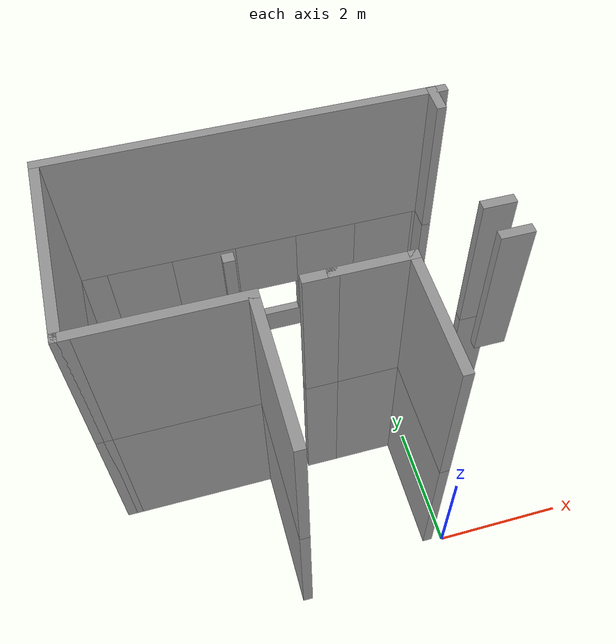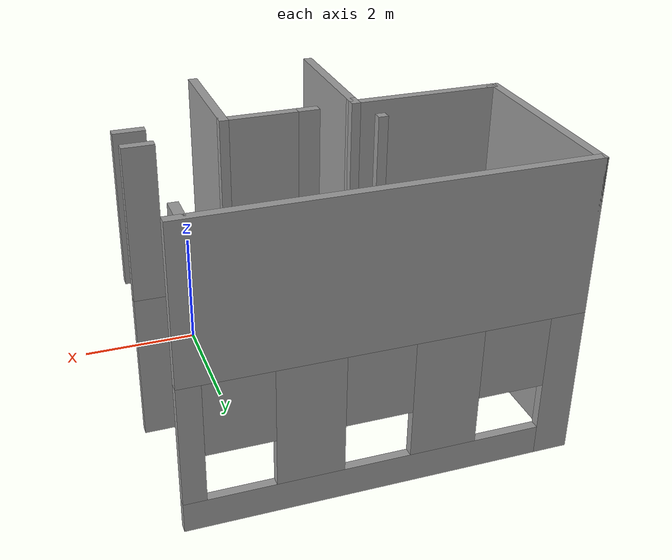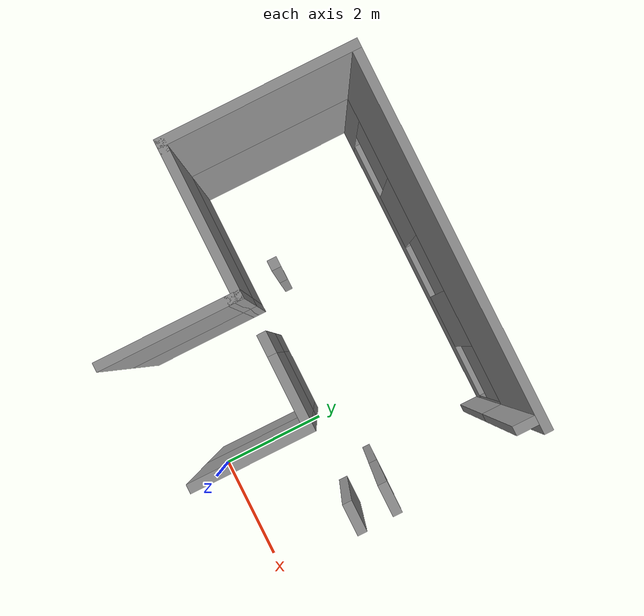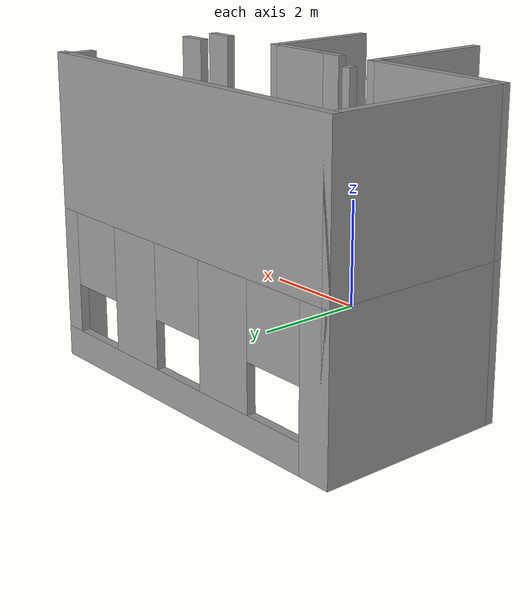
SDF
<sdf version="1.6">
 <model name="2storeyBuilding">
  <pose>-0.004073 0.180036 0 0 -0 0</pose>
  <link name="Wall_100">
   <collision name="Wall_100_Collision">
    <geometry><box><size>3.25 0.15 2.5</size></box></geometry>
    <pose>0 0 1.25 0 -0 0</pose>
   </collision>
   <visual name="Wall_100_Visual">
    <pose>0 0 1.25 0 -0 0</pose>
    <geometry><box><size>3.25 0.15 2.5</size></box></geometry>
    <material>
     <script><uri>file://media/materials/scripts/gazebo.material</uri><name>Gazebo/Grey</name></script>
     <ambient>1 1 1 1</ambient>
    </material>
    <meta><layer>1</layer></meta>
   </visual>
   <pose>-4.825 3.275 2.5 0 -0 1.5708</pose>
  </link>
  <link name="Wall_101">
   <collision name="Wall_101_Collision">
    <geometry><box><size>6.25 0.15 2.5</size></box></geometry>
    <pose>0 0 1.25 0 -0 0</pose>
   </collision>
   <visual name="Wall_101_Visual">
    <pose>0 0 1.25 0 -0 0</pose>
    <geometry><box><size>6.25 0.15 2.5</size></box></geometry>
    <material>
     <script><uri>file://media/materials/scripts/gazebo.material</uri><name>Gazebo/Grey</name></script>
     <ambient>1 1 1 1</ambient>
    </material>
    <meta><layer>1</layer></meta>
   </visual>
   <pose>-1.775 4.825 2.5 0 -0 0</pose>
  </link>
  <link name="Wall_124">
   <collision name="Wall_124_Collision">
    <geometry><box><size>2 0.15 2.5</size></box></geometry>
    <pose>0 0 1.25 0 -0 0</pose>
   </collision>
   <visual name="Wall_124_Visual">
    <pose>0 0 1.25 0 -0 0</pose>
    <geometry><box><size>2 0.15 2.5</size></box></geometry>
    <material>
     <script><uri>file://media/materials/scripts/gazebo.material</uri><name>Gazebo/Grey</name></script>
     <ambient>1 1 1 1</ambient>
    </material>
    <meta><layer>1</layer></meta>
   </visual>
   <pose>-0.228258 0.868105 2.5 0 -0 1.5708</pose>
  </link>
  <link name="Wall_125">
   <collision name="Wall_125_Collision">
    <geometry><box><size>1.25 0.15 2.5</size></box></geometry>
    <pose>0 0 1.25 0 -0 0</pose>
   </collision>
   <visual name="Wall_125_Visual">
    <pose>0 0 1.25 0 -0 0</pose>
    <geometry><box><size>1.25 0.15 2.5</size></box></geometry>
    <material>
     <script><uri>file://media/materials/scripts/gazebo.material</uri><name>Gazebo/Grey</name></script>
     <ambient>1 1 1 1</ambient>
    </material>
    <meta><layer>1</layer></meta>
   </visual>
   <pose>-0.778258 1.7931 2.5 0 -0 3.14159</pose>
  </link>
  <link name="Wall_126">
   <collision name="Wall_126_Collision">
    <geometry><box><size>0.5 0.15 2.5</size></box></geometry>
    <pose>0 0 1.25 0 -0 0</pose>
   </collision>
   <visual name="Wall_126_Visual">
    <pose>0 0 1.25 0 -0 0</pose>
    <geometry><box><size>0.5 0.15 2.5</size></box></geometry>
    <material>
     <script><uri>file://media/materials/scripts/gazebo.material</uri><name>Gazebo/Grey</name></script>
     <ambient>1 1 1 1</ambient>
    </material>
    <meta><layer>1</layer></meta>
   </visual>
   <pose>-1.50326 1.7931 2.5 0 -0 3.14159</pose>
  </link>
  <link name="Wall_127">
   <collision name="Wall_127_Collision">
    <geometry><box><size>0.5 0.15 2.5</size></box></geometry>
    <pose>0 0 1.25 0 -0 0</pose>
   </collision>
   <visual name="Wall_127_Visual">
    <pose>0 0 1.25 0 -0 0</pose>
    <geometry><box><size>0.5 0.15 2.5</size></box></geometry>
    <material>
     <script><uri>file://media/materials/scripts/gazebo.material</uri><name>Gazebo/Grey</name></script>
     <ambient>1 1 1 1</ambient>
    </material>
    <meta><layer>1</layer></meta>
   </visual>
   <pose>1.20108 1.80388 2.5 0 -0 3.14159</pose>
  </link>
  <link name="Wall_128">
   <collision name="Wall_128_Collision">
    <geometry><box><size>0.5 0.15 2.5</size></box></geometry>
    <pose>0 0 1.25 0 -0 0</pose>
   </collision>
   <visual name="Wall_128_Visual">
    <pose>0 0 1.25 0 -0 0</pose>
    <geometry><box><size>0.5 0.15 2.5</size></box></geometry>
    <material>
     <script><uri>file://media/materials/scripts/gazebo.material</uri><name>Gazebo/Grey</name></script>
     <ambient>1 1 1 1</ambient>
    </material>
    <meta><layer>1</layer></meta>
   </visual>
   <pose>1.18136 2.37591 2.5 0 -0 3.14159</pose>
  </link>
  <link name="Wall_129">
   <collision name="Wall_129_Collision">
    <geometry><box><size>0.5 0.15 2.5</size></box></geometry>
    <pose>0 0 1.25 0 -0 0</pose>
   </collision>
   <visual name="Wall_129_Visual">
    <pose>0 0 1.25 0 -0 0</pose>
    <geometry><box><size>0.5 0.15 2.5</size></box></geometry>
    <material>
     <script><uri>file://media/materials/scripts/gazebo.material</uri><name>Gazebo/Grey</name></script>
     <ambient>1 1 1 1</ambient>
    </material>
    <meta><layer>1</layer></meta>
   </visual>
   <pose>1.11308 4.6403 2.5 0 -0 -1.5708</pose>
  </link>
  <link name="Wall_131">
   <collision name="Wall_131_Collision">
    <geometry><box><size>0.16 0.15 2.5</size></box></geometry>
    <pose>0 0 1.25 0 -0 0</pose>
   </collision>
   <visual name="Wall_131_Visual">
    <pose>0 0 1.25 0 -0 0</pose>
    <geometry><box><size>0.16 0.15 2.5</size></box></geometry>
    <material>
     <script><uri>file://media/materials/scripts/gazebo.material</uri><name>Gazebo/Grey</name></script>
     <ambient>1 1 1 1</ambient>
    </material>
    <meta><layer>1</layer></meta>
   </visual>
   <pose>-2.55403 2.39774 2.5 0 -0 0</pose>
  </link>
  <link name="Wall_19">
   <collision name="Wall_19_Collision">
    <geometry><box><size>2.25 0.15 2.5</size></box></geometry>
    <pose>0 0 1.25 0 -0 0</pose>
   </collision>
   <visual name="Wall_19_Visual">
    <pose>0 0 1.25 0 -0 0</pose>
    <geometry><box><size>2.25 0.15 2.5</size></box></geometry>
    <material>
     <script><uri>file://media/materials/scripts/gazebo.material</uri><name>Gazebo/Grey</name></script>
     <ambient>1 1 1 1</ambient>
    </material>
    <meta><layer>0</layer></meta>
   </visual>
   <pose>-2.375 0.575 0 0 -0 1.5708</pose>
  </link>
  <link name="Wall_20">
   <collision name="Wall_20_Collision">
    <geometry><box><size>0.25 0.15 2.5</size></box></geometry>
    <pose>0 0 1.25 0 -0 0</pose>
   </collision>
   <visual name="Wall_20_Visual">
    <pose>0 0 1.25 0 -0 0</pose>
    <geometry><box><size>0.25 0.15 2.5</size></box></geometry>
    <material>
     <script><uri>file://media/materials/scripts/gazebo.material</uri><name>Gazebo/Grey</name></script>
     <ambient>1 1 1 1</ambient>
    </material>
    <meta><layer>0</layer></meta>
   </visual>
   <pose>-2.375 1.675 0 0 -0 1.5708</pose>
  </link>
  <link name="Wall_21">
   <collision name="Wall_21_Collision">
    <geometry><box><size>2.5 0.15 2.5</size></box></geometry>
    <pose>0 0 1.25 0 -0 0</pose>
   </collision>
   <visual name="Wall_21_Visual">
    <pose>0 0 1.25 0 -0 0</pose>
    <geometry><box><size>2.5 0.15 2.5</size></box></geometry>
    <material>
     <script><uri>file://media/materials/scripts/gazebo.material</uri><name>Gazebo/Grey</name></script>
     <ambient>1 1 1 1</ambient>
    </material>
    <meta><layer>0</layer></meta>
   </visual>
   <pose>-3.55 1.725 0 0 -0 3.14159</pose>
  </link>
  <link name="Wall_22">
   <collision name="Wall_22_Collision">
    <geometry><box><size>0.25 0.15 2.5</size></box></geometry>
    <pose>0 0 1.25 0 -0 0</pose>
   </collision>
   <visual name="Wall_22_Visual">
    <pose>0 0 1.25 0 -0 0</pose>
    <geometry><box><size>0.25 0.15 2.5</size></box></geometry>
    <material>
     <script><uri>file://media/materials/scripts/gazebo.material</uri><name>Gazebo/Grey</name></script>
     <ambient>1 1 1 1</ambient>
    </material>
    <meta><layer>0</layer></meta>
   </visual>
   <pose>-4.775 1.725 0 0 -0 3.14159</pose>
  </link>
  <link name="Wall_23">
   <collision name="Wall_23_Collision">
    <geometry><box><size>3.25 0.15 2.5</size></box></geometry>
    <pose>0 0 1.25 0 -0 0</pose>
   </collision>
   <visual name="Wall_23_Visual">
    <pose>0 0 1.25 0 -0 0</pose>
    <geometry><box><size>3.25 0.15 2.5</size></box></geometry>
    <material>
     <script><uri>file://media/materials/scripts/gazebo.material</uri><name>Gazebo/Grey</name></script>
     <ambient>1 1 1 1</ambient>
    </material>
    <meta><layer>0</layer></meta>
   </visual>
   <pose>-4.825 3.275 0 0 -0 1.5708</pose>
  </link>
  <link name="Wall_24">
   <pose>-1.775 4.825 0 0 -0 0</pose>
   <visual name="Wall_24_Visual_0">
    <pose>-2.84052 0 1.25 0 -0 0</pose>
    <geometry><box><size>0.56895 0.15 2.5</size></box></geometry>
    <material>
     <script><uri>file://media/materials/scripts/gazebo.material</uri><name>Gazebo/Grey</name></script>
     <ambient>1 1 1 1</ambient>
    </material>
    <meta><layer>0</layer></meta>
   </visual>
   <collision name="Wall_24_Collision_0">
    <geometry><box><size>0.56895 0.15 2.5</size></box></geometry>
    <pose>-2.84052 0 1.25 0 -0 0</pose>
   </collision>
   <visual name="Wall_24_Visual_1">
    <pose>0.284475 0 0.25 0 -0 0</pose>
    <geometry><box><size>5.68105 0.15 0.5</size></box></geometry>
    <material>
     <script><uri>file://media/materials/scripts/gazebo.material</uri><name>Gazebo/Grey</name></script>
     <ambient>1 1 1 1</ambient>
    </material>
    <meta><layer>0</layer></meta>
   </visual>
   <collision name="Wall_24_Collision_1">
    <geometry><box><size>5.68105 0.15 0.5</size></box></geometry>
    <pose>0.284475 0 0.25 0 -0 0</pose>
   </collision>
   <visual name="Wall_24_Visual_2">
    <pose>-0.93452 0 1.5 0 -0 0</pose>
    <geometry><box><size>1.08103 0.15 2</size></box></geometry>
    <material>
     <script><uri>file://media/materials/scripts/gazebo.material</uri><name>Gazebo/Grey</name></script>
     <ambient>1 1 1 1</ambient>
    </material>
    <meta><layer>0</layer></meta>
   </visual>
   <collision name="Wall_24_Collision_2">
    <geometry><box><size>1.08103 0.15 2</size></box></geometry>
    <pose>-0.93452 0 1.5 0 -0 0</pose>
   </collision>
   <visual name="Wall_24_Visual_3">
    <pose>1.18841 0 1.5 0 -0 0</pose>
    <geometry><box><size>1.05469 0.15 2</size></box></geometry>
    <material>
     <script><uri>file://media/materials/scripts/gazebo.material</uri><name>Gazebo/Grey</name></script>
     <ambient>1 1 1 1</ambient>
    </material>
    <meta><layer>0</layer></meta>
   </visual>
   <collision name="Wall_24_Collision_3">
    <geometry><box><size>1.05469 0.15 2</size></box></geometry>
    <pose>1.18841 0 1.5 0 -0 0</pose>
   </collision>
   <visual name="Wall_24_Visual_4">
    <pose>2.94359 0 1.5 0 -0 0</pose>
    <geometry><box><size>0.362818 0.15 2</size></box></geometry>
    <material>
     <script><uri>file://media/materials/scripts/gazebo.material</uri><name>Gazebo/Grey</name></script>
     <ambient>1 1 1 1</ambient>
    </material>
    <meta><layer>0</layer></meta>
   </visual>
   <collision name="Wall_24_Collision_4">
    <geometry><box><size>0.362818 0.15 2</size></box></geometry>
    <pose>2.94359 0 1.5 0 -0 0</pose>
   </collision>
   <visual name="Wall_24_Visual_5">
    <pose>-2.01554 0 1.9 0 -0 0</pose>
    <geometry><box><size>1.08101 0.15 1.2</size></box></geometry>
    <material>
     <script><uri>file://media/materials/scripts/gazebo.material</uri><name>Gazebo/Grey</name></script>
     <ambient>1 1 1 1</ambient>
    </material>
    <meta><layer>0</layer></meta>
   </visual>
   <collision name="Wall_24_Collision_5">
    <geometry><box><size>1.08101 0.15 1.2</size></box></geometry>
    <pose>-2.01554 0 1.9 0 -0 0</pose>
   </collision>
   <visual name="Wall_24_Visual_6">
    <pose>0.133533 0 1.9 0 -0 0</pose>
    <geometry><box><size>1.05507 0.15 1.2</size></box></geometry>
    <material>
     <script><uri>file://media/materials/scripts/gazebo.material</uri><name>Gazebo/Grey</name></script>
     <ambient>1 1 1 1</ambient>
    </material>
    <meta><layer>0</layer></meta>
   </visual>
   <collision name="Wall_24_Collision_6">
    <geometry><box><size>1.05507 0.15 1.2</size></box></geometry>
    <pose>0.133533 0 1.9 0 -0 0</pose>
   </collision>
   <visual name="Wall_24_Visual_7">
    <pose>2.23897 0 1.9 0 -0 0</pose>
    <geometry><box><size>1.04643 0.15 1.2</size></box></geometry>
    <material>
     <script><uri>file://media/materials/scripts/gazebo.material</uri><name>Gazebo/Grey</name></script>
     <ambient>1 1 1 1</ambient>
    </material>
    <meta><layer>0</layer></meta>
   </visual>
   <collision name="Wall_24_Collision_7">
    <geometry><box><size>1.04643 0.15 1.2</size></box></geometry>
    <pose>2.23897 0 1.9 0 -0 0</pose>
   </collision>
  </link>
  <link name="Wall_59">
   <collision name="Wall_59_Collision">
    <geometry><box><size>2 0.15 2.5</size></box></geometry>
    <pose>0 0 1.25 0 -0 0</pose>
   </collision>
   <visual name="Wall_59_Visual">
    <pose>0 0 1.25 0 -0 0</pose>
    <geometry><box><size>2 0.15 2.5</size></box></geometry>
    <material>
     <script><uri>file://media/materials/scripts/gazebo.material</uri><name>Gazebo/Grey</name></script>
     <ambient>1 1 1 1</ambient>
    </material>
    <meta><layer>0</layer></meta>
   </visual>
   <pose>-0.228258 0.868105 0 0 -0 1.5708</pose>
  </link>
  <link name="Wall_60">
   <collision name="Wall_60_Collision">
    <geometry><box><size>1.25 0.15 2.5</size></box></geometry>
    <pose>0 0 1.25 0 -0 0</pose>
   </collision>
   <visual name="Wall_60_Visual">
    <pose>0 0 1.25 0 -0 0</pose>
    <geometry><box><size>1.25 0.15 2.5</size></box></geometry>
    <material>
     <script><uri>file://media/materials/scripts/gazebo.material</uri><name>Gazebo/Grey</name></script>
     <ambient>1 1 1 1</ambient>
    </material>
    <meta><layer>0</layer></meta>
   </visual>
   <pose>-0.778258 1.7931 0 0 -0 3.14159</pose>
  </link>
  <link name="Wall_61">
   <collision name="Wall_61_Collision">
    <geometry><box><size>0.5 0.15 2.5</size></box></geometry>
    <pose>0 0 1.25 0 -0 0</pose>
   </collision>
   <visual name="Wall_61_Visual">
    <pose>0 0 1.25 0 -0 0</pose>
    <geometry><box><size>0.5 0.15 2.5</size></box></geometry>
    <material>
     <script><uri>file://media/materials/scripts/gazebo.material</uri><name>Gazebo/Grey</name></script>
     <ambient>1 1 1 1</ambient>
    </material>
    <meta><layer>0</layer></meta>
   </visual>
   <pose>-1.50326 1.7931 0 0 -0 3.14159</pose>
  </link>
  <link name="Wall_65">
   <collision name="Wall_65_Collision">
    <geometry><box><size>0.5 0.15 2.5</size></box></geometry>
    <pose>0 0 1.25 0 -0 0</pose>
   </collision>
   <visual name="Wall_65_Visual">
    <pose>0 0 1.25 0 -0 0</pose>
    <geometry><box><size>0.5 0.15 2.5</size></box></geometry>
    <material>
     <script><uri>file://media/materials/scripts/gazebo.material</uri><name>Gazebo/Grey</name></script>
     <ambient>1 1 1 1</ambient>
    </material>
    <meta><layer>0</layer></meta>
   </visual>
   <pose>1.18136 2.37591 0 0 -0 3.14159</pose>
  </link>
  <link name="Wall_68">
   <collision name="Wall_68_Collision">
    <geometry><box><size>0.5 0.15 2.5</size></box></geometry>
    <pose>0 0 1.25 0 -0 0</pose>
   </collision>
   <visual name="Wall_68_Visual">
    <pose>0 0 1.25 0 -0 0</pose>
    <geometry><box><size>0.5 0.15 2.5</size></box></geometry>
    <material>
     <script><uri>file://media/materials/scripts/gazebo.material</uri><name>Gazebo/Grey</name></script>
     <ambient>1 1 1 1</ambient>
    </material>
    <meta><layer>0</layer></meta>
   </visual>
   <pose>1.11308 4.6403 0 0 -0 -1.5708</pose>
  </link>
  <link name="Wall_71">
   <collision name="Wall_71_Collision">
    <geometry><box><size>0.16 0.15 2.5</size></box></geometry>
    <pose>0 0 1.25 0 -0 0</pose>
   </collision>
   <visual name="Wall_71_Visual">
    <pose>0 0 1.25 0 -0 0</pose>
    <geometry><box><size>0.16 0.15 2.5</size></box></geometry>
    <material>
     <script><uri>file://media/materials/scripts/gazebo.material</uri><name>Gazebo/Grey</name></script>
     <ambient>1 1 1 1</ambient>
    </material>
    <meta><layer>0</layer></meta>
   </visual>
   <pose>-2.55403 2.39774 0 0 -0 0</pose>
  </link>
  <link name="Wall_96">
   <collision name="Wall_96_Collision">
    <geometry><box><size>2.25 0.15 2.5</size></box></geometry>
    <pose>0 0 1.25 0 -0 0</pose>
   </collision>
   <visual name="Wall_96_Visual">
    <pose>0 0 1.25 0 -0 0</pose>
    <geometry><box><size>2.25 0.15 2.5</size></box></geometry>
    <material>
     <script><uri>file://media/materials/scripts/gazebo.material</uri><name>Gazebo/Grey</name></script>
     <ambient>1 1 1 1</ambient>
    </material>
    <meta><layer>1</layer></meta>
   </visual>
   <pose>-2.375 0.575 2.5 0 -0 1.5708</pose>
  </link>
  <link name="Wall_97">
   <collision name="Wall_97_Collision">
    <geometry><box><size>0.25 0.15 2.5</size></box></geometry>
    <pose>0 0 1.25 0 -0 0</pose>
   </collision>
   <visual name="Wall_97_Visual">
    <pose>0 0 1.25 0 -0 0</pose>
    <geometry><box><size>0.25 0.15 2.5</size></box></geometry>
    <material>
     <script><uri>file://media/materials/scripts/gazebo.material</uri><name>Gazebo/Grey</name></script>
     <ambient>1 1 1 1</ambient>
    </material>
    <meta><layer>1</layer></meta>
   </visual>
   <pose>-2.375 1.675 2.5 0 -0 1.5708</pose>
  </link>
  <link name="Wall_98">
   <collision name="Wall_98_Collision">
    <geometry><box><size>2.5 0.15 2.5</size></box></geometry>
    <pose>0 0 1.25 0 -0 0</pose>
   </collision>
   <visual name="Wall_98_Visual">
    <pose>0 0 1.25 0 -0 0</pose>
    <geometry><box><size>2.5 0.15 2.5</size></box></geometry>
    <material>
     <script><uri>file://media/materials/scripts/gazebo.material</uri><name>Gazebo/Grey</name></script>
     <ambient>1 1 1 1</ambient>
    </material>
    <meta><layer>1</layer></meta>
   </visual>
   <pose>-3.55 1.725 2.5 0 -0 3.14159</pose>
  </link>
  <link name="Wall_99">
   <collision name="Wall_99_Collision">
    <geometry><box><size>0.25 0.15 2.5</size></box></geometry>
    <pose>0 0 1.25 0 -0 0</pose>
   </collision>
   <visual name="Wall_99_Visual">
    <pose>0 0 1.25 0 -0 0</pose>
    <geometry><box><size>0.25 0.15 2.5</size></box></geometry>
    <material>
     <script><uri>file://media/materials/scripts/gazebo.material</uri><name>Gazebo/Grey</name></script>
     <ambient>1 1 1 1</ambient>
    </material>
    <meta><layer>1</layer></meta>
   </visual>
   <pose>-4.775 1.725 2.5 0 -0 3.14159</pose>
  </link>
  <static>1</static>
 </model>
</sdf>
